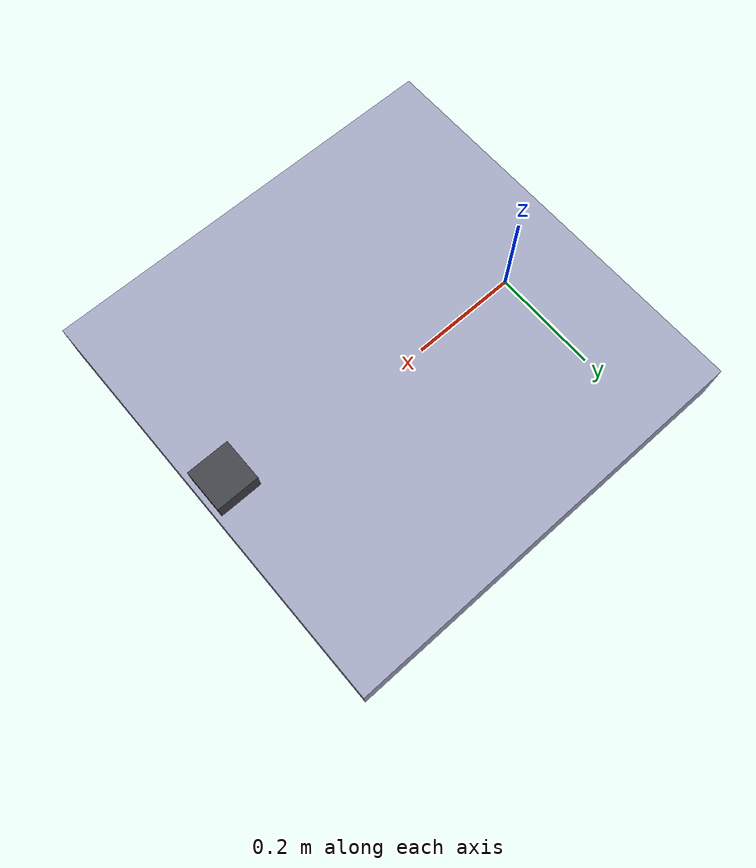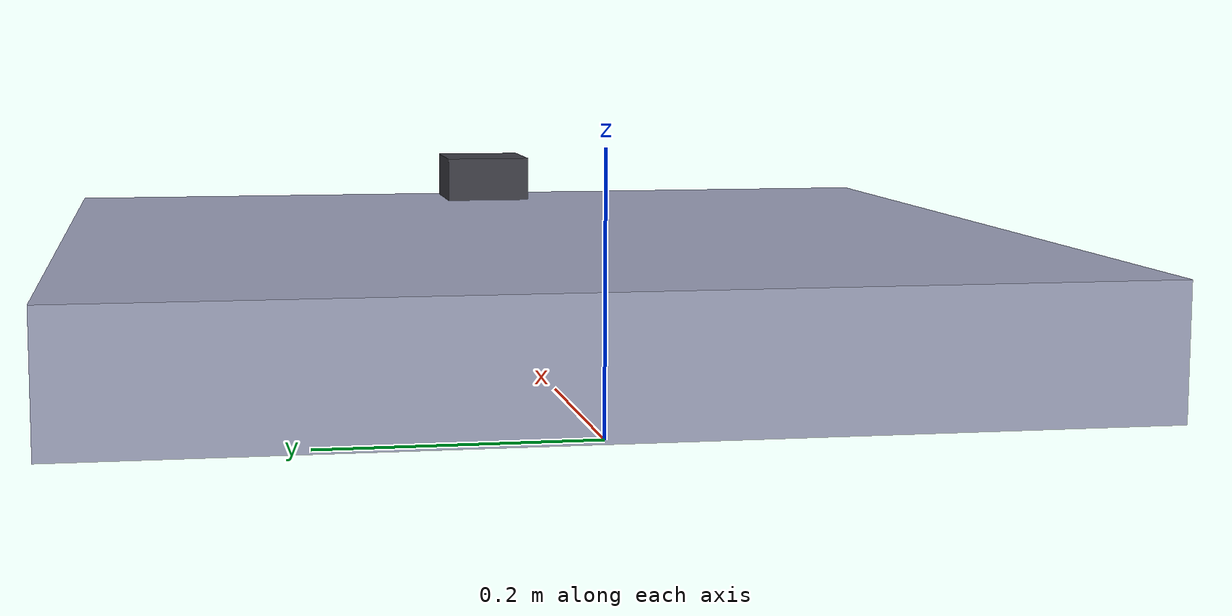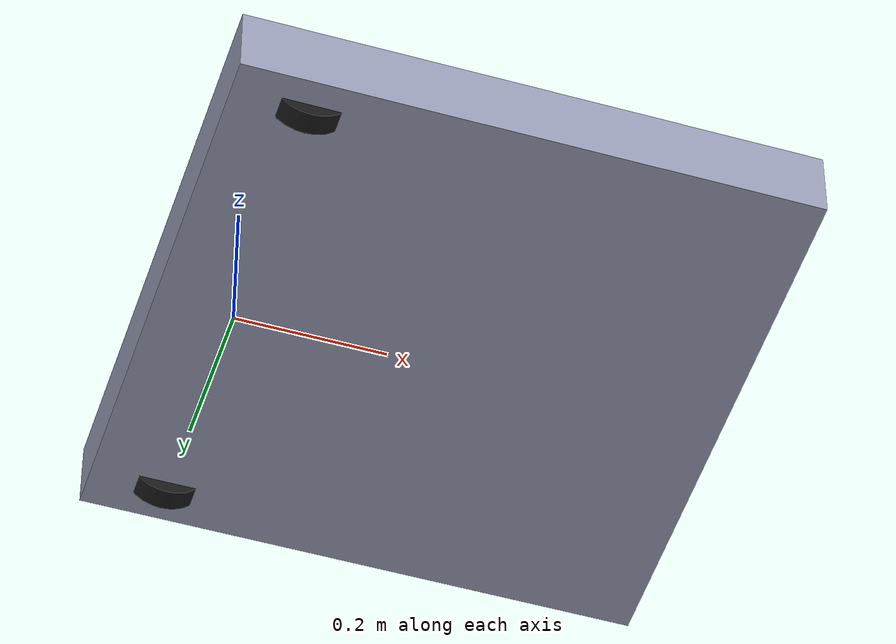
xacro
<?xml version="1.0"?>
<robot xmlns:xacro="http://www.ros.org/wiki/xacro" name="pcw_robot">

  <!-- chassis -->
  <xacro:property name="body_len"      value="0.750"/>
  <xacro:property name="body_wid"      value="0.750"/>
  <xacro:property name="body_top"      value="0.11553"/>
  <xacro:property name="body_clear"    value="0.018"/>   <!-- MEASURE: ground clearance -->
  <!-- drive wheels -->
  <xacro:property name="wheel_r"       value="0.050"/>
  <xacro:property name="wheel_w"       value="0.030"/>   <!-- MEASURE -->
  <xacro:property name="wheel_sep"     value="0.650"/>   <!-- MEASURE: wheel centre to wheel centre -->
  <xacro:property name="axle_from_rear" value="0.100"/>

  <!-- LiDAR mount in base_link (the point Point-LIO's aft_mapped tracks) -->
  <xacro:arg name="lidar_x"   default="0.604"/>
  <xacro:arg name="lidar_y"   default="0.0"/>
  <xacro:arg name="lidar_z"   default="0.122"/>
  <xacro:arg name="lidar_yaw" default="0.0"/>  <!-- mount is square now (offset fixed mechanically) -->

  <!-- chassis centre relative to the axle -->
  <xacro:property name="body_cx" value="${body_len/2 - axle_from_rear}"/>
  <xacro:property name="body_h"  value="${body_top - body_clear}"/>

  <material name="body_grey"><color rgba="0.62 0.64 0.74 1.0"/></material>
  <material name="tyre_black"><color rgba="0.1 0.1 0.1 1.0"/></material>
  <material name="lidar_dark"><color rgba="0.25 0.25 0.28 1.0"/></material>

  <link name="base_link"/>

  <!-- chassis -->
  <link name="chassis_link">
    <visual>
      <origin xyz="0 0 ${body_h/2}"/>
      <geometry><box size="${body_len} ${body_wid} ${body_h}"/></geometry>
      <material name="body_grey"/>
    </visual>
    <collision>
      <origin xyz="0 0 ${body_h/2}"/>
      <geometry><box size="${body_len} ${body_wid} ${body_h}"/></geometry>
    </collision>
  </link>
  <joint name="chassis_joint" type="fixed">
    <parent link="base_link"/>
    <child link="chassis_link"/>
    <origin xyz="${body_cx} 0 ${body_clear}"/>
  </joint>

  <xacro:macro name="wheel" params="side y">
    <link name="${side}_wheel_link">
      <visual>
        <origin rpy="${pi/2} 0 0"/>
        <geometry><cylinder radius="${wheel_r}" length="${wheel_w}"/></geometry>
        <material name="tyre_black"/>
      </visual>
      <collision>
        <origin rpy="${pi/2} 0 0"/>
        <geometry><cylinder radius="${wheel_r}" length="${wheel_w}"/></geometry>
      </collision>
    </link>
    <joint name="${side}_wheel_joint" type="fixed">
      <parent link="base_link"/>
      <child link="${side}_wheel_link"/>
      <origin xyz="0 ${y} ${wheel_r}"/>
    </joint>
  </xacro:macro>
  <xacro:wheel side="left"  y="${wheel_sep/2}"/>
  <xacro:wheel side="right" y="${-wheel_sep/2}"/>

  <!-- Unitree L1 (~75 x 75 x 65 mm) -->
  <link name="lidar_link">
    <visual>
      <geometry><box size="0.075 0.075 0.065"/></geometry>
      <material name="lidar_dark"/>
    </visual>
  </link>
  <joint name="lidar_joint" type="fixed">
    <parent link="base_link"/>
    <child link="lidar_link"/>
    <origin xyz="$(arg lidar_x) $(arg lidar_y) $(arg lidar_z)" rpy="0 0 $(arg lidar_yaw)"/>
  </joint>

  <!-- transmitter coil: centre of the chassis, on top -->
  <link name="transmitter_link"/>
  <joint name="transmitter_joint" type="fixed">
    <parent link="chassis_link"/>
    <child link="transmitter_link"/>
    <origin xyz="0 0 ${body_h}"/>
  </joint>

</robot>
